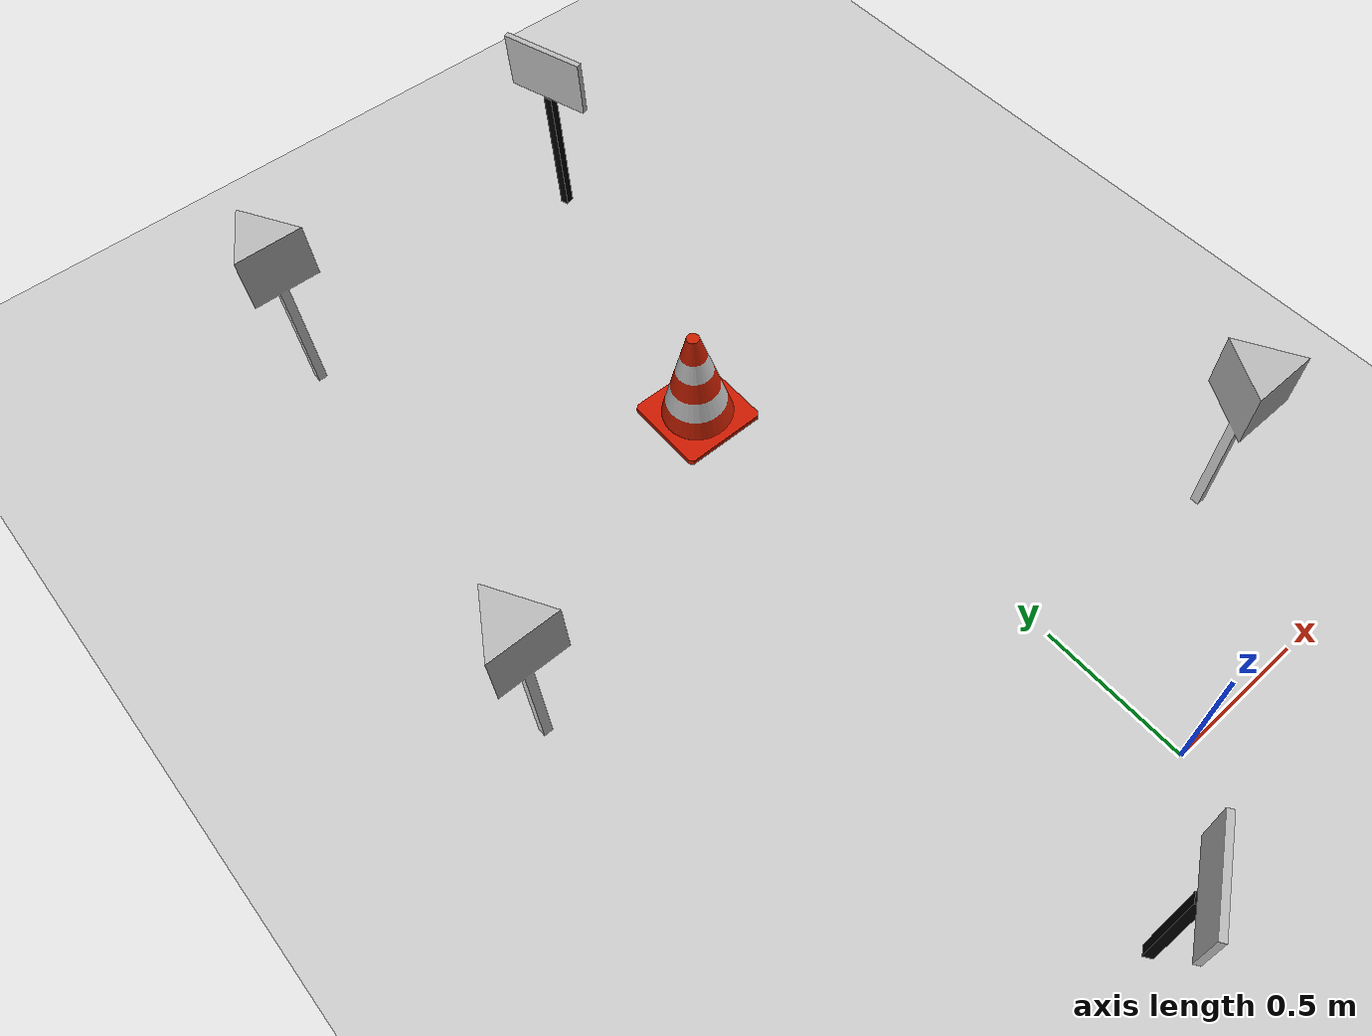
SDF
<sdf version='1.9'>
  <world name='empty'>
    <physics name='1ms' type='ignored'>
      <max_step_size>0.001</max_step_size>
      <real_time_factor>1</real_time_factor>
      <real_time_update_rate>1000</real_time_update_rate>
    </physics>
    <plugin name='gz::sim::systems::Physics' filename='ignition-gazebo-physics-system'/>
    <plugin name='gz::sim::systems::UserCommands' filename='ignition-gazebo-user-commands-system'/>
    <plugin name='gz::sim::systems::SceneBroadcaster' filename='ignition-gazebo-scene-broadcaster-system'/>
    <plugin name='gz::sim::systems::Contact' filename='ignition-gazebo-contact-system'/>
    <gravity>0 0 -9.8</gravity>
    <magnetic_field>6e-06 2.3e-05 -4.2e-05</magnetic_field>
    <atmosphere type='adiabatic'/>
    <scene>
      <ambient>0.4 0.4 0.4 1</ambient>
      <background>0.7 0.7 0.7 1</background>
      <shadows>true</shadows>
    </scene>
    <model name='ground_plane'>
      <static>true</static>
      <link name='link'>
        <collision name='collision'>
          <geometry>
            <plane>
              <normal>0 0 1</normal>
              <size>100 100</size>
            </plane>
          </geometry>
          <surface>
            <friction>
              <ode/>
            </friction>
            <bounce/>
            <contact/>
          </surface>
        </collision>
        <visual name='visual'>
          <geometry>
            <plane>
              <normal>0 0 1</normal>
              <size>100 100</size>
            </plane>
          </geometry>
          <material>
            <ambient>0.8 0.8 0.8 1</ambient>
            <diffuse>0.8 0.8 0.8 1</diffuse>
            <specular>0.8 0.8 0.8 1</specular>
          </material>
        </visual>
        <pose>0 0 0 0 -0 0</pose>
        <inertial>
          <pose>0 0 0 0 -0 0</pose>
          <mass>1</mass>
          <inertia>
            <ixx>1</ixx>
            <ixy>0</ixy>
            <ixz>0</ixz>
            <iyy>1</iyy>
            <iyz>0</iyz>
            <izz>1</izz>
          </inertia>
        </inertial>
        <enable_wind>false</enable_wind>
      </link>
      <pose>0 0 0 0 -0 0</pose>
      <self_collide>false</self_collide>
    </model>
    <model name='arrow_Left'>
      <link name='link'>
        <visual name='visual'>
          <geometry>
            <mesh>
              <uri>file:///home/siddhanth/mrt_ws_2/src/ROS2_Autonomous_Subdivision/rover_gazebosim/meshes/arrow_Left.dae</uri>
            </mesh>
          </geometry>
        </visual>
        <collision name='collision'>
          <geometry>
            <mesh>
              <uri>file:///home/siddhanth/mrt_ws_2/src/ROS2_Autonomous_Subdivision/rover_gazebosim/meshes/arrow_Left.dae</uri>
            </mesh>
          </geometry>
        </collision>
        <pose>0 0 0 0 -0 0</pose>
        <inertial>
          <pose>0 0 0 0 -0 0</pose>
          <mass>1</mass>
          <inertia>
            <ixx>1</ixx>
            <ixy>0</ixy>
            <ixz>0</ixz>
            <iyy>1</iyy>
            <iyz>0</iyz>
            <izz>1</izz>
          </inertia>
        </inertial>
        <enable_wind>false</enable_wind>
      </link>
      <pose>-0.011213 2.89994 0 0 0 -1.26822</pose>
      <static>false</static>
      <self_collide>false</self_collide>
    </model>
    <model name='arrow_Right'>
      <link name='link'>
        <visual name='visual'>
          <geometry>
            <mesh>
              <uri>file:///home/siddhanth/mrt_ws_2/src/ROS2_Autonomous_Subdivision/rover_gazebosim/meshes/arrow_Right.dae</uri>
            </mesh>
          </geometry>
        </visual>
        <collision name='collision'>
          <geometry>
            <mesh>
              <uri>file:///home/siddhanth/mrt_ws_2/src/ROS2_Autonomous_Subdivision/rover_gazebosim/meshes/arrow_Right.dae</uri>
            </mesh>
          </geometry>
        </collision>
        <pose>0 0 0 0 -0 0</pose>
        <inertial>
          <pose>0 0 0 0 -0 0</pose>
          <mass>1</mass>
          <inertia>
            <ixx>1</ixx>
            <ixy>0</ixy>
            <ixz>0</ixz>
            <iyy>1</iyy>
            <iyz>0</iyz>
            <izz>1</izz>
          </inertia>
        </inertial>
        <enable_wind>false</enable_wind>
      </link>
      <pose>-0.488779 -0.284862 0 0 -0 0.598867</pose>
      <static>false</static>
      <self_collide>false</self_collide>
    </model>
    <model name='aruco_1'>
      <link name='link'>
        <visual name='visual'>
          <geometry>
            <mesh>
              <uri>file:///home/siddhanth/mrt_ws_2/src/ROS2_Autonomous_Subdivision/rover_gazebosim/meshes/aruco_1.dae</uri>
            </mesh>
          </geometry>
        </visual>
        <collision name='collision'>
          <geometry>
            <mesh>
              <uri>file:///home/siddhanth/mrt_ws_2/src/ROS2_Autonomous_Subdivision/rover_gazebosim/meshes/aruco_1.dae</uri>
            </mesh>
          </geometry>
        </collision>
        <pose>0 0 0 0 -0 0</pose>
        <inertial>
          <pose>0 0 0 0 -0 0</pose>
          <mass>1</mass>
          <inertia>
            <ixx>1</ixx>
            <ixy>0</ixy>
            <ixz>0</ixz>
            <iyy>1</iyy>
            <iyz>0</iyz>
            <izz>1</izz>
          </inertia>
        </inertial>
        <enable_wind>false</enable_wind>
      </link>
      <pose>0.717647 1.50958 0 0 -0 0</pose>
      <static>false</static>
      <self_collide>false</self_collide>
    </model>
    <model name='aruco_2'>
      <link name='link'>
        <visual name='visual'>
          <geometry>
            <mesh>
              <uri>file:///home/siddhanth/mrt_ws_2/src/ROS2_Autonomous_Subdivision/rover_gazebosim/meshes/aruco_2.dae</uri>
            </mesh>
          </geometry>
        </visual>
        <collision name='collision'>
          <geometry>
            <mesh>
              <uri>file:///home/siddhanth/mrt_ws_2/src/ROS2_Autonomous_Subdivision/rover_gazebosim/meshes/aruco_2.dae</uri>
            </mesh>
          </geometry>
        </collision>
        <pose>0 0 0 0 -0 0</pose>
        <inertial>
          <pose>0 0 0 0 -0 0</pose>
          <mass>1</mass>
          <inertia>
            <ixx>1</ixx>
            <ixy>0</ixy>
            <ixz>0</ixz>
            <iyy>1</iyy>
            <iyz>0</iyz>
            <izz>1</izz>
          </inertia>
        </inertial>
        <enable_wind>false</enable_wind>
      </link>
      <pose>-1.13671 2.78441 0 0 -0 0</pose>
      <static>false</static>
      <self_collide>false</self_collide>
    </model>
    <model name='aruco_3'>
      <link name='link'>
        <visual name='visual'>
          <geometry>
            <mesh>
              <uri>file:///home/siddhanth/mrt_ws_2/src/ROS2_Autonomous_Subdivision/rover_gazebosim/meshes/aruco_3.dae</uri>
            </mesh>
          </geometry>
        </visual>
        <collision name='collision'>
          <geometry>
            <mesh>
              <uri>file:///home/siddhanth/mrt_ws_2/src/ROS2_Autonomous_Subdivision/rover_gazebosim/meshes/aruco_3.dae</uri>
            </mesh>
          </geometry>
        </collision>
        <pose>0 0 0 0 -0 0</pose>
        <inertial>
          <pose>0 0 0 0 -0 0</pose>
          <mass>1</mass>
          <inertia>
            <ixx>1</ixx>
            <ixy>0</ixy>
            <ixz>0</ixz>
            <iyy>1</iyy>
            <iyz>0</iyz>
            <izz>1</izz>
          </inertia>
        </inertial>
        <enable_wind>false</enable_wind>
      </link>
      <pose>-1.31096 0.250208 0 0 -0 0</pose>
      <static>false</static>
      <self_collide>false</self_collide>
    </model>
    <model name='traffic_cone_'>
      <link name='link'>
        <visual name='visual'>
          <geometry>
            <mesh>
              <uri>file:///home/siddhanth/mrt_ws_2/src/ROS2_Autonomous_Subdivision/rover_gazebosim/meshes/traffic_cone_.dae</uri>
            </mesh>
          </geometry>
        </visual>
        <collision name='collision'>
          <geometry>
            <mesh>
              <uri>file:///home/siddhanth/mrt_ws_2/src/ROS2_Autonomous_Subdivision/rover_gazebosim/meshes/traffic_cone_.dae</uri>
            </mesh>
          </geometry>
        </collision>
        <pose>0 0 0 0 -0 0</pose>
        <inertial>
          <pose>0 0 0 0 -0 0</pose>
          <mass>1</mass>
          <inertia>
            <ixx>1</ixx>
            <ixy>0</ixy>
            <ixz>0</ixz>
            <iyy>1</iyy>
            <iyz>0</iyz>
            <izz>1</izz>
          </inertia>
        </inertial>
        <enable_wind>false</enable_wind>
      </link>
      <pose>-0.273584 1.81596 0 0 -0 0</pose>
      <static>false</static>
      <self_collide>false</self_collide>
    </model>
    <light name='sun' type='directional'>
      <pose>0 0 10 0 -0 0</pose>
      <cast_shadows>true</cast_shadows>
      <intensity>1</intensity>
      <direction>-0.5 0.1 -0.9</direction>
      <diffuse>0.8 0.8 0.8 1</diffuse>
      <specular>0.2 0.2 0.2 1</specular>
      <attenuation>
        <range>1000</range>
        <linear>0.01</linear>
        <constant>0.90000000000000002</constant>
        <quadratic>0.001</quadratic>
      </attenuation>
      <spot>
        <inner_angle>0</inner_angle>
        <outer_angle>0</outer_angle>
        <falloff>0</falloff>
      </spot>
    </light>
  </world>
</sdf>
